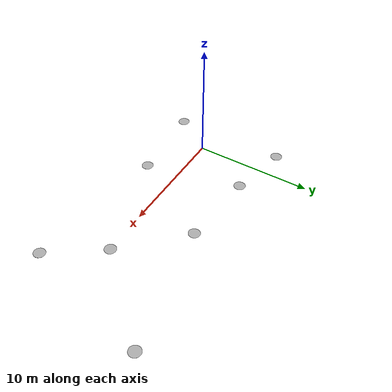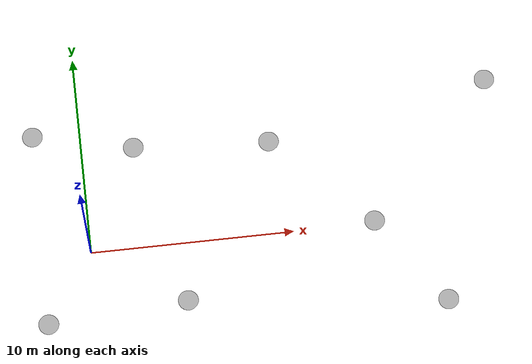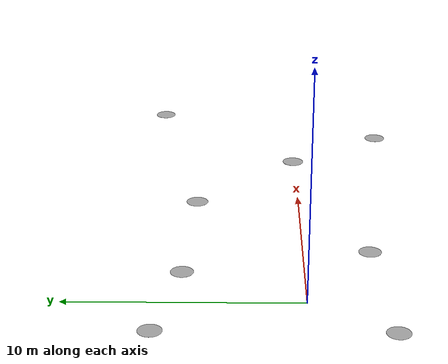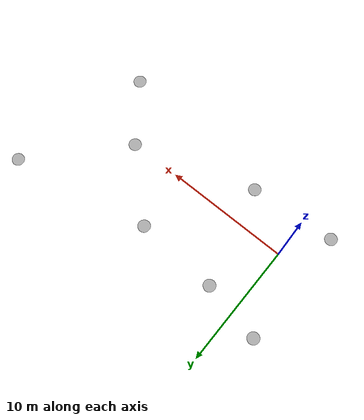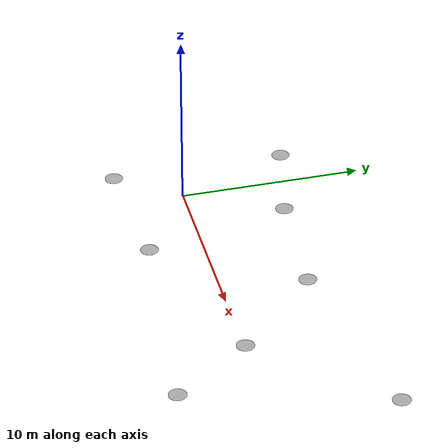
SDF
<sdf version="1.9">
 <world name="world_demo">
  <physics name="1ms" type="ignored">
   <max_step_size>0.01</max_step_size>
   <real_time_factor>1</real_time_factor>
   <real_time_update_rate>1000</real_time_update_rate>
  </physics>
  <plugin name="ignition::gazebo::systems::Physics" filename="libignition-gazebo-physics-system.so"/>
  <plugin name="ignition::gazebo::systems::UserCommands" filename="libignition-gazebo-user-commands-system.so"/>
  <plugin name="ignition::gazebo::systems::SceneBroadcaster" filename="libignition-gazebo-scene-broadcaster-system.so"/>
  <plugin name="ignition::gazebo::systems::Sensors" filename="ignition-gazebo-sensors-system">
   <render_engine>ogre2</render_engine>
  </plugin>
  <scene>
   <ambient>1 1 1 1</ambient>
   <background>0.3 0.7 0.9 1</background>
   <shadows>false</shadows>
   <grid>true</grid>
  </scene>
  <gravity>0 0 -9.8</gravity>
  <magnetic_field>6e-06 2.3e-05 -4.2e-05</magnetic_field>
  <atmosphere type="adiabatic"/>
  <model name="ground_plane">
   <static>true</static>
   <link name="link">
    <collision name="collision">
     <geometry><plane><normal>0 0 1</normal><size>1 1</size></plane></geometry>
    </collision>
    <inertial>
     <mass>1</mass>
     <inertia><ixx>1</ixx><ixy>0</ixy><ixz>0</ixz><iyy>1</iyy><iyz>0</iyz><izz>1</izz></inertia>
    </inertial>
   </link>
  </model>
  <model name="depot_collision">
   <static>true</static>
   <pose>7.19009 1.09982 0 0 -0 0</pose>
   <link name="collision_link">
    <collision name="wall1">
     <pose>0 -7.6129 4.5 0 0 0</pose>
     <geometry><box><size>30.167 0.08 9</size></box></geometry>
    </collision>
    <collision name="wall2">
     <pose>0 7.2875 4.5 0 0 0</pose>
     <geometry><box><size>30.167 0.08 9</size></box></geometry>
    </collision>
    <collision name="wall3">
     <pose>-15 0 4.5 0 0 0</pose>
     <geometry><box><size>0.08 15.36 9</size></box></geometry>
    </collision>
    <collision name="wall4">
     <pose>15 0 4.5 0 0 0</pose>
     <geometry><box><size>0.08 15.36 9</size></box></geometry>
    </collision>
    <collision name="boxes1">
     <pose>0.22268 -4.7268 0.68506 0 0 0</pose>
     <geometry><box><size>1.288 1.422 1.288</size></box></geometry>
    </collision>
    <collision name="boxes2">
     <pose>3.1727 -4.7268 0.68506 0 0 0</pose>
     <geometry><box><size>1.288 1.422 1.288</size></box></geometry>
    </collision>
    <collision name="boxes3">
     <pose>5.95268 -4.7268 0.68506 0 0 0</pose>
     <geometry><box><size>1.288 1.422 1.288</size></box></geometry>
    </collision>
    <collision name="boxes4">
     <pose>8.55887 -4.7268 0.68506 0 0 0</pose>
     <geometry><box><size>1.288 1.422 1.288</size></box></geometry>
    </collision>
    <collision name="boxes5">
     <pose>11.326 -4.7268 0.68506 0 0 0</pose>
     <geometry><box><size>1.288 1.422 1.288</size></box></geometry>
    </collision>
    <collision name="boxes6">
     <pose>0.22268 -2.37448 0.68506 0 0 0</pose>
     <geometry><box><size>1.288 1.422 1.288</size></box></geometry>
    </collision>
    <collision name="boxes7">
     <pose>3.1727 -2.37448 0.68506 0 0 0</pose>
     <geometry><box><size>1.288 1.422 1.288</size></box></geometry>
    </collision>
    <collision name="boxes8">
     <pose>5.95268 -2.37448 0.68506 0 0 0</pose>
     <geometry><box><size>1.288 1.422 1.288</size></box></geometry>
    </collision>
    <collision name="boxes9">
     <pose>8.55887 -2.37448 0.68506 0 0 0</pose>
     <geometry><box><size>1.288 1.422 1.288</size></box></geometry>
    </collision>
    <collision name="boxes10">
     <pose>11.326 -2.37448 0.68506 0 0 0</pose>
     <geometry><box><size>1.288 1.422 1.288</size></box></geometry>
    </collision>
    <collision name="boxes11">
     <pose>-1.2268 4.1557 0.68506 0 0 -1.02799893</pose>
     <geometry><box><size>1.288 1.422 1.288</size></box></geometry>
    </collision>
    <collision name="pilar1">
     <pose>-7.5402 3.6151 1 0 0 0</pose>
     <geometry><box><size>0.465 0.465 2</size></box></geometry>
    </collision>
    <collision name="pilar2">
     <pose>7.4575 3.6151 1 0 0 0</pose>
     <geometry><box><size>0.465 0.465 2</size></box></geometry>
    </collision>
    <collision name="pilar3">
     <pose>-7.5402 -3.8857 1 0 0 0</pose>
     <geometry><box><size>0.465 0.465 2</size></box></geometry>
    </collision>
    <collision name="pilar4">
     <pose>7.4575 -3.8857 1 0 0 0</pose>
     <geometry><box><size>0.465 0.465 2</size></box></geometry>
    </collision>
    <collision name="pallet_mover1">
     <pose>-0.6144 -2.389 0.41838 0 0 0</pose>
     <geometry><box><size>0.363 0.44 0.719</size></box></geometry>
    </collision>
    <collision name="pallet_mover2">
     <pose>-1.6004 4.8225 0.41838 0 0 0</pose>
     <geometry><box><size>0.363 0.244 0.719</size></box></geometry>
    </collision>
    <collision name="stairs">
     <pose>13.018 3.1652 0.25 0 0 0</pose>
     <geometry><box><size>1.299 0.6 0.5</size></box></geometry>
    </collision>
    <collision name="shelfs1">
     <pose>1.4662 -0.017559 0.5 0 0 0</pose>
     <geometry><cylinder><radius>0.029999999999999999</radius><length>1</length></cylinder></geometry>
    </collision>
    <collision name="shelfs2">
     <pose>2.6483 -0.017559 0.5 0 0 0</pose>
     <geometry><cylinder><radius>0.029999999999999999</radius><length>1</length></cylinder></geometry>
    </collision>
    <collision name="shelfs3">
     <pose>5.3247 -0.017559 0.5 0 0 0</pose>
     <geometry><cylinder><radius>0.029999999999999999</radius><length>1</length></cylinder></geometry>
    </collision>
    <collision name="shelfs4">
     <pose>6.5063 -0.017559 0.5 0 0 0</pose>
     <geometry><cylinder><radius>0.029999999999999999</radius><length>1</length></cylinder></geometry>
    </collision>
    <collision name="shelfs5">
     <pose>9.0758 -0.017559 0.5 0 0 0</pose>
     <geometry><cylinder><radius>0.029999999999999999</radius><length>1</length></cylinder></geometry>
    </collision>
    <collision name="shelfs6">
     <pose>10.258 -0.017559 0.5 0 0 0</pose>
     <geometry><cylinder><radius>0.029999999999999999</radius><length>1</length></cylinder></geometry>
    </collision>
    <collision name="shelfs7">
     <pose>1.4662 2.5664 0.5 0 0 0</pose>
     <geometry><cylinder><radius>0.029999999999999999</radius><length>1</length></cylinder></geometry>
    </collision>
    <collision name="shelfs8">
     <pose>2.6483 2.5664 0.5 0 0 0</pose>
     <geometry><cylinder><radius>0.029999999999999999</radius><length>1</length></cylinder></geometry>
    </collision>
    <collision name="shelfs9">
     <pose>5.3247 2.5664 0.5 0 0 0</pose>
     <geometry><cylinder><radius>0.029999999999999999</radius><length>1</length></cylinder></geometry>
    </collision>
    <collision name="shelfs10">
     <pose>6.5063 2.5664 0.5 0 0 0</pose>
     <geometry><cylinder><radius>0.029999999999999999</radius><length>1</length></cylinder></geometry>
    </collision>
    <collision name="shelfs11">
     <pose>9.0758 2.5664 0.5 0 0 0</pose>
     <geometry><cylinder><radius>0.029999999999999999</radius><length>1</length></cylinder></geometry>
    </collision>
    <collision name="shelfs12">
     <pose>10.258 2.5664 0.5 0 0 0</pose>
     <geometry><cylinder><radius>0.029999999999999999</radius><length>1</length></cylinder></geometry>
    </collision>
    <collision name="shelfs13">
     <pose>1.4662 5.1497 0.5 0 0 0</pose>
     <geometry><cylinder><radius>0.029999999999999999</radius><length>1</length></cylinder></geometry>
    </collision>
    <collision name="shelfs14">
     <pose>2.6483 5.1497 0.5 0 0 0</pose>
     <geometry><cylinder><radius>0.029999999999999999</radius><length>1</length></cylinder></geometry>
    </collision>
    <collision name="shelfs15">
     <pose>5.3247 5.1497 0.5 0 0 0</pose>
     <geometry><cylinder><radius>0.029999999999999999</radius><length>1</length></cylinder></geometry>
    </collision>
    <collision name="shelfs16">
     <pose>6.5063 5.1497 0.5 0 0 0</pose>
     <geometry><cylinder><radius>0.029999999999999999</radius><length>1</length></cylinder></geometry>
    </collision>
    <collision name="shelfs17">
     <pose>9.0758 5.1497 0.5 0 0 0</pose>
     <geometry><cylinder><radius>0.029999999999999999</radius><length>1</length></cylinder></geometry>
    </collision>
    <collision name="shelfs18">
     <pose>10.258 5.1497 0.5 0 0 0</pose>
     <geometry><cylinder><radius>0.029999999999999999</radius><length>1</length></cylinder></geometry>
    </collision>
    <inertial>
     <mass>1</mass>
     <inertia><ixx>1</ixx><ixy>0</ixy><ixz>0</ixz><iyy>1</iyy><iyz>0</iyz><izz>1</izz></inertia>
    </inertial>
   </link>
  </model>
  <model name="cylinder">
   <pose>2.5699 5.15912 0.01 0 -0 0</pose>
   <link name="cylinder_link">
    <inertial>
     <inertia>
      <ixx>0.14580000000000001</ixx>
      <ixy>0</ixy>
      <ixz>0</ixz>
      <iyy>0.14580000000000001</iyy>
      <iyz>0</iyz>
      <izz>0.125</izz>
     </inertia>
     <mass>1</mass>
    </inertial>
    <collision name="cylinder_collision">
     <geometry><cylinder><radius>0.5</radius><length>0.001</length></cylinder></geometry>
    </collision>
    <visual name="cylinder_visual">
     <geometry><cylinder><radius>0.5</radius><length>0.001</length></cylinder></geometry>
     <material>
      <ambient>0.3 0.3 0.3 1</ambient>
      <diffuse>0.7 0.7 0.7 1</diffuse>
      <specular>1 1 1 1</specular>
     </material>
    </visual>
   </link>
   <static>false</static>
  </model>
  <model name="cylinder_0">
   <pose>4.48063 -2.91828 0.01 0 -0 0</pose>
   <link name="cylinder_link">
    <inertial>
     <inertia>
      <ixx>0.14580000000000001</ixx>
      <ixy>0</ixy>
      <ixz>0</ixz>
      <iyy>0.14580000000000001</iyy>
      <iyz>0</iyz>
      <izz>0.125</izz>
     </inertia>
     <mass>1</mass>
    </inertial>
    <collision name="cylinder_collision">
     <geometry><cylinder><radius>0.5</radius><length>0.001</length></cylinder></geometry>
    </collision>
    <visual name="cylinder_visual">
     <geometry><cylinder><radius>0.5</radius><length>0.001</length></cylinder></geometry>
     <material>
      <ambient>0.3 0.3 0.3 1</ambient>
      <diffuse>0.7 0.7 0.7 1</diffuse>
      <specular>1 1 1 1</specular>
     </material>
    </visual>
   </link>
   <static>false</static>
  </model>
  <model name="cylinder_1">
   <pose>-2.40778 -3.4124 0.1 0 -0 0</pose>
   <link name="cylinder_link">
    <inertial>
     <inertia>
      <ixx>0.14580000000000001</ixx>
      <ixy>0</ixy>
      <ixz>0</ixz>
      <iyy>0.14580000000000001</iyy>
      <iyz>0</iyz>
      <izz>0.125</izz>
     </inertia>
     <mass>1</mass>
    </inertial>
    <collision name="cylinder_collision">
     <geometry><cylinder><radius>0.5</radius><length>0.001</length></cylinder></geometry>
    </collision>
    <visual name="cylinder_visual">
     <geometry><cylinder><radius>0.5</radius><length>0.001</length></cylinder></geometry>
     <material>
      <ambient>0.3 0.3 0.3 1</ambient>
      <diffuse>0.7 0.7 0.7 1</diffuse>
      <specular>1 1 1 1</specular>
     </material>
    </visual>
   </link>
   <static>false</static>
  </model>
  <model name="cylinder_2">
   <pose>-2.35573 6.20542 0.1 0 -0 0</pose>
   <link name="cylinder_link">
    <inertial>
     <inertia>
      <ixx>0.14580000000000001</ixx>
      <ixy>0</ixy>
      <ixz>0</ixz>
      <iyy>0.14580000000000001</iyy>
      <iyz>0</iyz>
      <izz>0.125</izz>
     </inertia>
     <mass>1</mass>
    </inertial>
    <collision name="cylinder_collision">
     <geometry><cylinder><radius>0.5</radius><length>0.001</length></cylinder></geometry>
    </collision>
    <visual name="cylinder_visual">
     <geometry><cylinder><radius>0.5</radius><length>0.001</length></cylinder></geometry>
     <material>
      <ambient>0.3 0.3 0.3 1</ambient>
      <diffuse>0.7 0.7 0.7 1</diffuse>
      <specular>1 1 1 1</specular>
     </material>
    </visual>
   </link>
   <static>false</static>
  </model>
  <model name="cylinder_3">
   <pose>9.27225 4.71324 0.1 0 -0 0</pose>
   <link name="cylinder_link">
    <inertial>
     <inertia>
      <ixx>0.14580000000000001</ixx>
      <ixy>0</ixy>
      <ixz>0</ixz>
      <iyy>0.14580000000000001</iyy>
      <iyz>0</iyz>
      <izz>0.125</izz>
     </inertia>
     <mass>1</mass>
    </inertial>
    <collision name="cylinder_collision">
     <geometry><cylinder><radius>0.5</radius><length>0.001</length></cylinder></geometry>
    </collision>
    <visual name="cylinder_visual">
     <geometry><cylinder><radius>0.5</radius><length>0.001</length></cylinder></geometry>
     <material>
      <ambient>0.3 0.3 0.3 1</ambient>
      <diffuse>0.7 0.7 0.7 1</diffuse>
      <specular>1 1 1 1</specular>
     </material>
    </visual>
   </link>
   <static>false</static>
  </model>
  <model name="cylinder_4">
   <pose>14.0069 0.084497 0.1 0 -0 0</pose>
   <link name="cylinder_link">
    <inertial>
     <inertia>
      <ixx>0.14580000000000001</ixx>
      <ixy>0</ixy>
      <ixz>0</ixz>
      <iyy>0.14580000000000001</iyy>
      <iyz>0</iyz>
      <izz>0.125</izz>
     </inertia>
     <mass>1</mass>
    </inertial>
    <collision name="cylinder_collision">
     <geometry><cylinder><radius>0.5</radius><length>0.001</length></cylinder></geometry>
    </collision>
    <visual name="cylinder_visual">
     <geometry><cylinder><radius>0.5</radius><length>0.001</length></cylinder></geometry>
     <material>
      <ambient>0.3 0.3 0.3 1</ambient>
      <diffuse>0.7 0.7 0.7 1</diffuse>
      <specular>1 1 1 1</specular>
     </material>
    </visual>
   </link>
   <static>false</static>
  </model>
  <model name="cylinder_5">
   <pose>20.3188 6.75942 0.1 0 -0 0</pose>
   <link name="cylinder_link">
    <inertial>
     <inertia>
      <ixx>0.14580000000000001</ixx>
      <ixy>0</ixy>
      <ixz>0</ixz>
      <iyy>0.14580000000000001</iyy>
      <iyz>0</iyz>
      <izz>0.125</izz>
     </inertia>
     <mass>1</mass>
    </inertial>
    <collision name="cylinder_collision">
     <geometry><cylinder><radius>0.5</radius><length>0.001</length></cylinder></geometry>
    </collision>
    <visual name="cylinder_visual">
     <geometry><cylinder><radius>0.5</radius><length>0.001</length></cylinder></geometry>
     <material>
      <ambient>0.3 0.3 0.3 1</ambient>
      <diffuse>0.7 0.7 0.7 1</diffuse>
      <specular>1 1 1 1</specular>
     </material>
    </visual>
   </link>
   <static>false</static>
  </model>
  <model name="cylinder_6">
   <pose>17.1254 -4.27834 0.1 0 -0 0</pose>
   <link name="cylinder_link">
    <inertial>
     <inertia>
      <ixx>0.14580000000000001</ixx>
      <ixy>0</ixy>
      <ixz>0</ixz>
      <iyy>0.14580000000000001</iyy>
      <iyz>0</iyz>
      <izz>0.125</izz>
     </inertia>
     <mass>1</mass>
    </inertial>
    <collision name="cylinder_collision">
     <geometry><cylinder><radius>0.5</radius><length>0.001</length></cylinder></geometry>
    </collision>
    <visual name="cylinder_visual">
     <geometry><cylinder><radius>0.5</radius><length>0.001</length></cylinder></geometry>
     <material>
      <ambient>0.3 0.3 0.3 1</ambient>
      <diffuse>0.7 0.7 0.7 1</diffuse>
      <specular>1 1 1 1</specular>
     </material>
    </visual>
   </link>
   <static>false</static>
  </model>
 </world>
</sdf>
